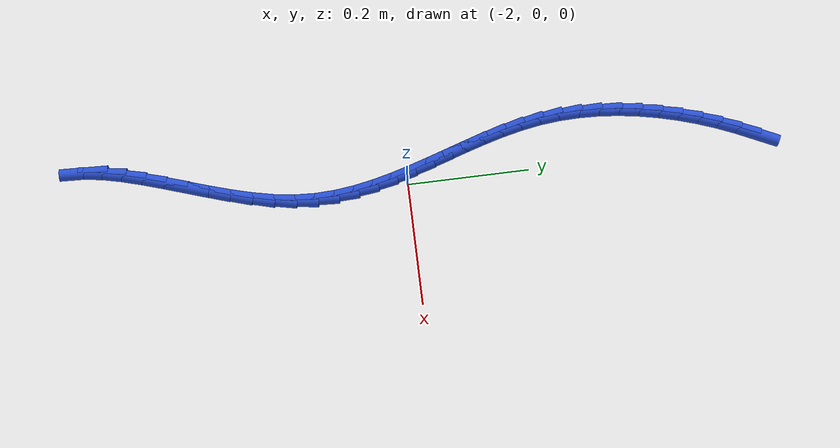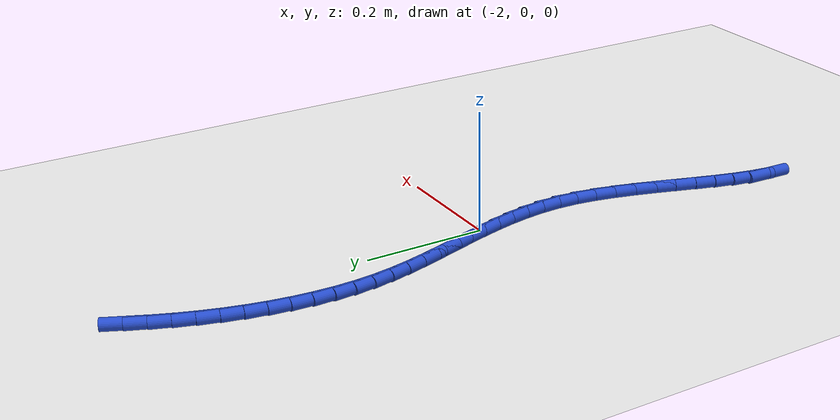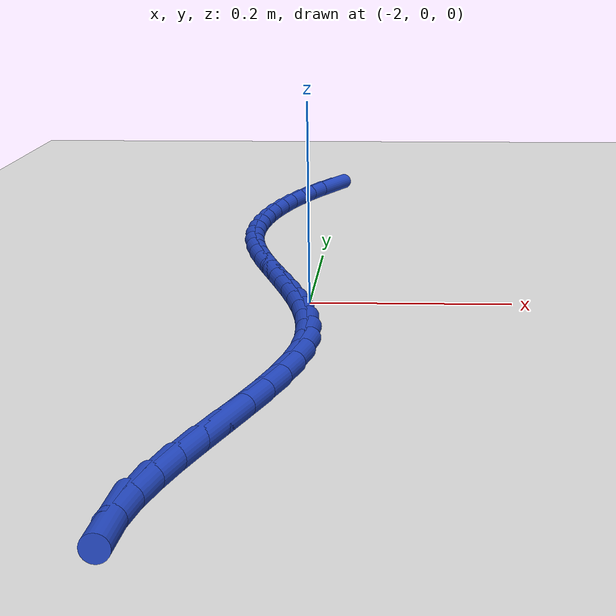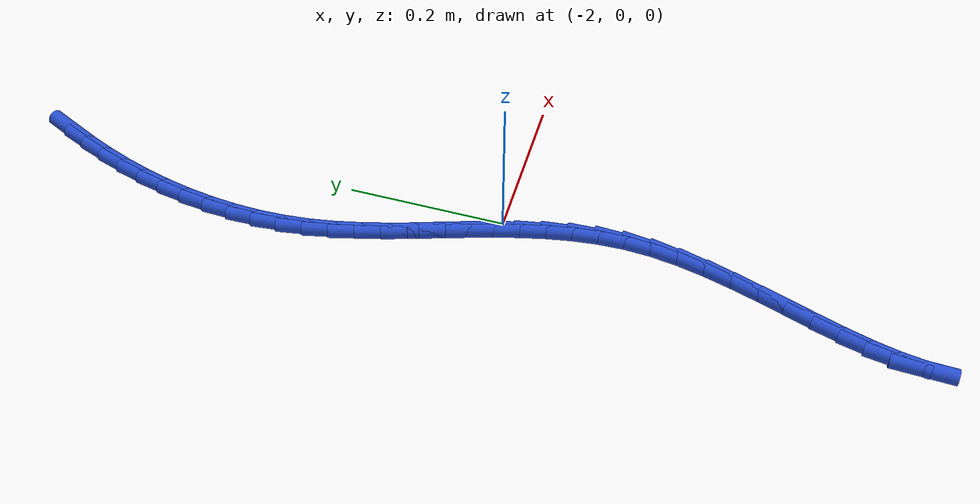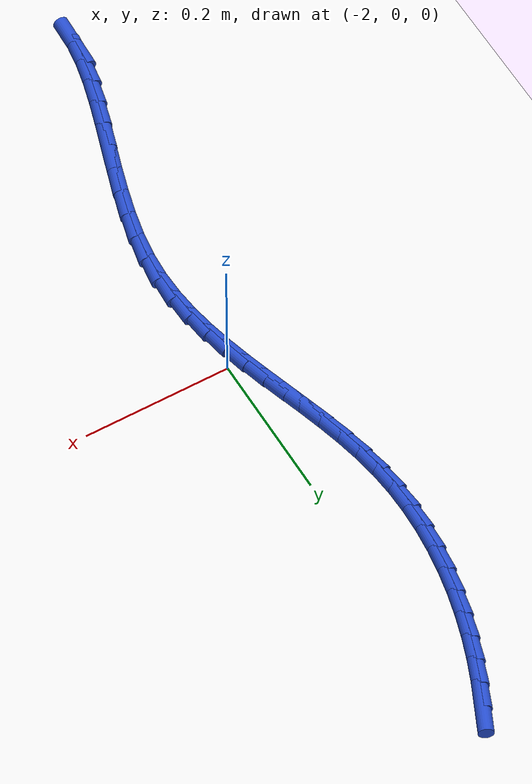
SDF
<sdf version="1.6">
 <world name="default">
  <model name="ground_plane">
   <static>1</static>
   <link name="link">
    <collision name="collision">
     <geometry><plane><normal>0 0 1</normal><size>100 100</size></plane></geometry>
     <surface><friction><ode><mu>100</mu><mu2>50</mu2></ode></friction></surface>
    </collision>
    <visual name="visual">
     <cast_shadows>0</cast_shadows>
     <geometry><plane><normal>0 0 1</normal><size>100 100</size></plane></geometry>
     <material>
      <script><uri>file://media/materials/scripts/gazebo.material</uri><name>Gazebo/WhiteGlow</name></script>
     </material>
    </visual>
   </link>
  </model>
  <model name="line">
   <link name="link_87">
    <pose>-2.012968515614561 0.5780218655934589 0.01 0 1.57 1.1371837574539119</pose>
    <collision name="collision">
     <geometry><cylinder><radius>0.01</radius><length>0.08</length></cylinder></geometry>
    </collision>
    <visual name="visual">
     <material>
      <script><name>Gazebo/Blue</name><uri>file://media/materials/scripts/gazebo.material</uri></script>
     </material>
     <geometry><cylinder><radius>0.01</radius><length>0.08</length></cylinder></geometry>
    </visual>
   </link>
   <link name="link_88">
    <pose>-2.0267044694741507 0.5483546242345471 0.01 0 1.57 1.178987380434584</pose>
    <collision name="collision">
     <geometry><cylinder><radius>0.01</radius><length>0.08</length></cylinder></geometry>
    </collision>
    <visual name="visual">
     <material>
      <script><name>Gazebo/Blue</name><uri>file://media/materials/scripts/gazebo.material</uri></script>
     </material>
     <geometry><cylinder><radius>0.01</radius><length>0.08</length></cylinder></geometry>
    </visual>
   </link>
   <link name="link_89">
    <pose>-2.039185139887997 0.5181475967466094 0.01 0 1.57 1.2232135980595182</pose>
    <collision name="collision">
     <geometry><cylinder><radius>0.01</radius><length>0.08</length></cylinder></geometry>
    </collision>
    <visual name="visual">
     <material>
      <script><name>Gazebo/Blue</name><uri>file://media/materials/scripts/gazebo.material</uri></script>
     </material>
     <geometry><cylinder><radius>0.01</radius><length>0.08</length></cylinder></geometry>
    </visual>
   </link>
   <link name="link_90">
    <pose>-2.0503314327369138 0.48738151044109135 0.01 0 1.57 1.269723517690743</pose>
    <collision name="collision">
     <geometry><cylinder><radius>0.01</radius><length>0.08</length></cylinder></geometry>
    </collision>
    <visual name="visual">
     <material>
      <script><name>Gazebo/Blue</name><uri>file://media/materials/scripts/gazebo.material</uri></script>
     </material>
     <geometry><cylinder><radius>0.01</radius><length>0.08</length></cylinder></geometry>
    </visual>
   </link>
   <link name="link_91">
    <pose>-2.0600642539017153 0.45603709262943826 0.01 0 1.57 1.3183009383375093</pose>
    <collision name="collision">
     <geometry><cylinder><radius>0.01</radius><length>0.08</length></cylinder></geometry>
    </collision>
    <visual name="visual">
     <material>
      <script><name>Gazebo/Blue</name><uri>file://media/materials/scripts/gazebo.material</uri></script>
     </material>
     <geometry><cylinder><radius>0.01</radius><length>0.08</length></cylinder></geometry>
    </visual>
   </link>
   <link name="link_92">
    <pose>-2.0682992230941997 0.4241188186944549 0.01 0 1.57 1.3688706429407582</pose>
    <collision name="collision">
     <geometry><cylinder><radius>0.01</radius><length>0.08</length></cylinder></geometry>
    </collision>
    <visual name="visual">
     <material>
      <script><name>Gazebo/Blue</name><uri>file://media/materials/scripts/gazebo.material</uri></script>
     </material>
     <geometry><cylinder><radius>0.01</radius><length>0.08</length></cylinder></geometry>
    </visual>
   </link>
   <link name="link_93">
    <pose>-2.0749269824305645 0.39174337566425377 0.01 0 1.57 1.4218645096690845</pose>
    <collision name="collision">
     <geometry><cylinder><radius>0.01</radius><length>0.08</length></cylinder></geometry>
    </collision>
    <visual name="visual">
     <material>
      <script><name>Gazebo/Blue</name><uri>file://media/materials/scripts/gazebo.material</uri></script>
     </material>
     <geometry><cylinder><radius>0.01</radius><length>0.08</length></cylinder></geometry>
    </visual>
   </link>
   <link name="link_94">
    <pose>-2.0798308038127082 0.3590605611948213 0.01 0 1.57 1.4777914092104925</pose>
    <collision name="collision">
     <geometry><cylinder><radius>0.01</radius><length>0.08</length></cylinder></geometry>
    </collision>
    <visual name="visual">
     <material>
      <script><name>Gazebo/Blue</name><uri>file://media/materials/scripts/gazebo.material</uri></script>
     </material>
     <geometry><cylinder><radius>0.01</radius><length>0.08</length></cylinder></geometry>
    </visual>
   </link>
   <link name="link_95">
    <pose>-2.082893958074159 0.3262201777417732 0.01 0 1.57 1.537146316521804</pose>
    <collision name="collision">
     <geometry><cylinder><radius>0.01</radius><length>0.08</length></cylinder></geometry>
    </collision>
    <visual name="visual">
     <material>
      <script><name>Gazebo/Blue</name><uri>file://media/materials/scripts/gazebo.material</uri></script>
     </material>
     <geometry><cylinder><radius>0.01</radius><length>0.08</length></cylinder></geometry>
    </visual>
   </link>
   <link name="link_96">
    <pose>-2.0839997160484485 0.2933720277607265 0.01 0 1.57 -1.541196825740562</pose>
    <collision name="collision">
     <geometry><cylinder><radius>0.01</radius><length>0.08</length></cylinder></geometry>
    </collision>
    <visual name="visual">
     <material>
      <script><name>Gazebo/Blue</name><uri>file://media/materials/scripts/gazebo.material</uri></script>
     </material>
     <geometry><cylinder><radius>0.01</radius><length>0.08</length></cylinder></geometry>
    </visual>
   </link>
   <link name="link_97">
    <pose>-2.083031348569105 0.26066591370729697 0.01 0 1.57 -1.4736448588759778</pose>
    <collision name="collision">
     <geometry><cylinder><radius>0.01</radius><length>0.08</length></cylinder></geometry>
    </collision>
    <visual name="visual">
     <material>
      <script><name>Gazebo/Blue</name><uri>file://media/materials/scripts/gazebo.material</uri></script>
     </material>
     <geometry><cylinder><radius>0.01</radius><length>0.08</length></cylinder></geometry>
    </visual>
   </link>
   <link name="link_98">
    <pose>-2.0798723017224003 0.22825156254962825 0.01 0 1.57 -1.4057006621935275</pose>
    <collision name="collision">
     <geometry><cylinder><radius>0.01</radius><length>0.08</length></cylinder></geometry>
    </collision>
    <visual name="visual">
     <material>
      <script><name>Gazebo/Blue</name><uri>file://media/materials/scripts/gazebo.material</uri></script>
     </material>
     <geometry><cylinder><radius>0.01</radius><length>0.08</length></cylinder></geometry>
    </visual>
   </link>
   <link name="link_99">
    <pose>-2.0745359118802775 0.19622275297603864 0.01 0 1.57 -1.349272979844258</pose>
    <collision name="collision">
     <geometry><cylinder><radius>0.01</radius><length>0.08</length></cylinder></geometry>
    </collision>
    <visual name="visual">
     <material>
      <script><name>Gazebo/Blue</name><uri>file://media/materials/scripts/gazebo.material</uri></script>
     </material>
     <geometry><cylinder><radius>0.01</radius><length>0.08</length></cylinder></geometry>
    </visual>
   </link>
   <link name="link_100">
    <pose>-2.067395436099298 0.16451823327304513 0.01 0 1.57 -1.306696950791737</pose>
    <collision name="collision">
     <geometry><cylinder><radius>0.01</radius><length>0.08</length></cylinder></geometry>
    </collision>
    <visual name="visual">
     <material>
      <script><name>Gazebo/Blue</name><uri>file://media/materials/scripts/gazebo.material</uri></script>
     </material>
     <geometry><cylinder><radius>0.01</radius><length>0.08</length></cylinder></geometry>
    </visual>
   </link>
   <link name="link_101">
    <pose>-2.058885959924939 0.1330501200388805 0.01 0 1.57 -1.277948307898485</pose>
    <collision name="collision">
     <geometry><cylinder><radius>0.01</radius><length>0.08</length></cylinder></geometry>
    </collision>
    <visual name="visual">
     <material>
      <script><name>Gazebo/Blue</name><uri>file://media/materials/scripts/gazebo.material</uri></script>
     </material>
     <geometry><cylinder><radius>0.01</radius><length>0.08</length></cylinder></geometry>
    </visual>
   </link>
   <link name="link_102">
    <pose>-2.0494425689026796 0.10173052987177869 0.01 0 1.57 -1.2628542115633734</pose>
    <collision name="collision">
     <geometry><cylinder><radius>0.01</radius><length>0.08</length></cylinder></geometry>
    </collision>
    <visual name="visual">
     <material>
      <script><name>Gazebo/Blue</name><uri>file://media/materials/scripts/gazebo.material</uri></script>
     </material>
     <geometry><cylinder><radius>0.01</radius><length>0.08</length></cylinder></geometry>
    </visual>
   </link>
   <link name="link_103">
    <pose>-2.0395003485779983 0.07047157936997248 0.01 0 1.57 -1.2612562811690498</pose>
    <collision name="collision">
     <geometry><cylinder><radius>0.01</radius><length>0.08</length></cylinder></geometry>
    </collision>
    <visual name="visual">
     <material>
      <script><name>Gazebo/Blue</name><uri>file://media/materials/scripts/gazebo.material</uri></script>
     </material>
     <geometry><cylinder><radius>0.01</radius><length>0.08</length></cylinder></geometry>
    </visual>
   </link>
   <link name="link_104">
    <pose>-2.029494384496372 0.03918538513169499 0.01 0 1.57 -1.273092450867149</pose>
    <collision name="collision">
     <geometry><cylinder><radius>0.01</radius><length>0.08</length></cylinder></geometry>
    </collision>
    <visual name="visual">
     <material>
      <script><name>Gazebo/Blue</name><uri>file://media/materials/scripts/gazebo.material</uri></script>
     </material>
     <geometry><cylinder><radius>0.01</radius><length>0.08</length></cylinder></geometry>
    </visual>
   </link>
   <link name="link_105">
    <pose>-2.0198597622032812 0.007784063755179441 0.01 0 1.57 -1.2984044166174307</pose>
    <collision name="collision">
     <geometry><cylinder><radius>0.01</radius><length>0.08</length></cylinder></geometry>
    </collision>
    <visual name="visual">
     <material>
      <script><name>Gazebo/Blue</name><uri>file://media/materials/scripts/gazebo.material</uri></script>
     </material>
     <geometry><cylinder><radius>0.01</radius><length>0.08</length></cylinder></geometry>
    </visual>
   </link>
   <link name="link_106">
    <pose>-2.0110315672442027 -0.023820268161341786 0.01 0 1.57 -1.337273293331647</pose>
    <collision name="collision">
     <geometry><cylinder><radius>0.01</radius><length>0.08</length></cylinder></geometry>
    </collision>
    <visual name="visual">
     <material>
      <script><name>Gazebo/Blue</name><uri>file://media/materials/scripts/gazebo.material</uri></script>
     </material>
     <geometry><cylinder><radius>0.01</radius><length>0.08</length></cylinder></geometry>
    </visual>
   </link>
   <link name="link_107">
    <pose>-2.003444885164616 -0.05571549401963409 0.01 0 1.57 -1.3896809120876625</pose>
    <collision name="collision">
     <geometry><cylinder><radius>0.01</radius><length>0.08</length></cylinder></geometry>
    </collision>
    <visual name="visual">
     <material>
      <script><name>Gazebo/Blue</name><uri>file://media/materials/scripts/gazebo.material</uri></script>
     </material>
     <geometry><cylinder><radius>0.01</radius><length>0.08</length></cylinder></geometry>
    </visual>
   </link>
   <link name="link_108">
    <pose>-1.997534801509998 -0.08798949722146497 0.01 0 1.57 -1.4552979183904662</pose>
    <collision name="collision">
     <geometry><cylinder><radius>0.01</radius><length>0.08</length></cylinder></geometry>
    </collision>
    <visual name="visual">
     <material>
      <script><name>Gazebo/Blue</name><uri>file://media/materials/scripts/gazebo.material</uri></script>
     </material>
     <geometry><cylinder><radius>0.01</radius><length>0.08</length></cylinder></geometry>
    </visual>
   </link>
   <link name="link_109">
    <pose>-1.9937364018258283 -0.12073016116860136 0.01 0 1.57 -1.5332221184198722</pose>
    <collision name="collision">
     <geometry><cylinder><radius>0.01</radius><length>0.08</length></cylinder></geometry>
    </collision>
    <visual name="visual">
     <material>
      <script><name>Gazebo/Blue</name><uri>file://media/materials/scripts/gazebo.material</uri></script>
     </material>
     <geometry><cylinder><radius>0.01</radius><length>0.08</length></cylinder></geometry>
    </visual>
   </link>
   <link name="link_110">
    <pose>-1.9924847716575844 -0.15402536926281 0.01 0 1.57 1.5198697846942886</pose>
    <collision name="collision">
     <geometry><cylinder><radius>0.01</radius><length>0.08</length></cylinder></geometry>
    </collision>
    <visual name="visual">
     <material>
      <script><name>Gazebo/Blue</name><uri>file://media/materials/scripts/gazebo.material</uri></script>
     </material>
     <geometry><cylinder><radius>0.01</radius><length>0.08</length></cylinder></geometry>
    </visual>
   </link>
   <link name="link_111">
    <pose>-1.9942145876635393 -0.1879628848055008 0.01 0 1.57 1.4305593445122553</pose>
    <collision name="collision">
     <geometry><cylinder><radius>0.01</radius><length>0.08</length></cylinder></geometry>
    </collision>
    <visual name="visual">
     <material>
      <script><name>Gazebo/Blue</name><uri>file://media/materials/scripts/gazebo.material</uri></script>
     </material>
     <geometry><cylinder><radius>0.01</radius><length>0.08</length></cylinder></geometry>
    </visual>
   </link>
   <link name="link_112">
    <pose>-1.9990974819716163 -0.22255320836758472 0.01 0 1.57 1.360155223893119</pose>
    <collision name="collision">
     <geometry><cylinder><radius>0.01</radius><length>0.08</length></cylinder></geometry>
    </collision>
    <visual name="visual">
     <material>
      <script><name>Gazebo/Blue</name><uri>file://media/materials/scripts/gazebo.material</uri></script>
     </material>
     <geometry><cylinder><radius>0.01</radius><length>0.08</length></cylinder></geometry>
    </visual>
   </link>
   <link name="link_113">
    <pose>-2.0065902662559365 -0.25759687994787805 0.01 0 1.57 1.3092422686753122</pose>
    <collision name="collision">
     <geometry><cylinder><radius>0.01</radius><length>0.08</length></cylinder></geometry>
    </collision>
    <visual name="visual">
     <material>
      <script><name>Gazebo/Blue</name><uri>file://media/materials/scripts/gazebo.material</uri></script>
     </material>
     <geometry><cylinder><radius>0.01</radius><length>0.08</length></cylinder></geometry>
    </visual>
   </link>
   <link name="link_114">
    <pose>-2.0160294817936673 -0.2928591131339084 0.01 0 1.57 1.2754816400171824</pose>
    <collision name="collision">
     <geometry><cylinder><radius>0.01</radius><length>0.08</length></cylinder></geometry>
    </collision>
    <visual name="visual">
     <material>
      <script><name>Gazebo/Blue</name><uri>file://media/materials/scripts/gazebo.material</uri></script>
     </material>
     <geometry><cylinder><radius>0.01</radius><length>0.08</length></cylinder></geometry>
    </visual>
   </link>
   <link name="link_115">
    <pose>-2.026751669861976 -0.32810512151320237 0.01 0 1.57 1.2573832315867985</pose>
    <collision name="collision">
     <geometry><cylinder><radius>0.01</radius><length>0.08</length></cylinder></geometry>
    </collision>
    <visual name="visual">
     <material>
      <script><name>Gazebo/Blue</name><uri>file://media/materials/scripts/gazebo.material</uri></script>
     </material>
     <geometry><cylinder><radius>0.01</radius><length>0.08</length></cylinder></geometry>
    </visual>
   </link>
   <link name="link_116">
    <pose>-2.0380933717380274 -0.3631001186732866 0.01 0 1.57 1.2544097683145685</pose>
    <collision name="collision">
     <geometry><cylinder><radius>0.01</radius><length>0.08</length></cylinder></geometry>
    </collision>
    <visual name="visual">
     <material>
      <script><name>Gazebo/Blue</name><uri>file://media/materials/scripts/gazebo.material</uri></script>
     </material>
     <geometry><cylinder><radius>0.01</radius><length>0.08</length></cylinder></geometry>
    </visual>
   </link>
   <link name="link_117">
    <pose>-2.0493911286989914 -0.39760931820168816 0.01 0 1.57 1.2670647580242884</pose>
    <collision name="collision">
     <geometry><cylinder><radius>0.01</radius><length>0.08</length></cylinder></geometry>
    </collision>
    <visual name="visual">
     <material>
      <script><name>Gazebo/Blue</name><uri>file://media/materials/scripts/gazebo.material</uri></script>
     </material>
     <geometry><cylinder><radius>0.01</radius><length>0.08</length></cylinder></geometry>
    </visual>
   </link>
   <link name="link_118">
    <pose>-2.0599814820220317 -0.4313979336859333 0.01 0 1.57 1.2970483163602338</pose>
    <collision name="collision">
     <geometry><cylinder><radius>0.01</radius><length>0.08</length></cylinder></geometry>
    </collision>
    <visual name="visual">
     <material>
      <script><name>Gazebo/Blue</name><uri>file://media/materials/scripts/gazebo.material</uri></script>
     </material>
     <geometry><cylinder><radius>0.01</radius><length>0.08</length></cylinder></geometry>
    </visual>
   </link>
   <link name="link_119">
    <pose>-2.069200972984316 -0.4642311787135499 0.01 0 1.57 1.3475132901031481</pose>
    <collision name="collision">
     <geometry><cylinder><radius>0.01</radius><length>0.08</length></cylinder></geometry>
    </collision>
    <visual name="visual">
     <material>
      <script><name>Gazebo/Blue</name><uri>file://media/materials/scripts/gazebo.material</uri></script>
     </material>
     <geometry><cylinder><radius>0.01</radius><length>0.08</length></cylinder></geometry>
    </visual>
   </link>
   <link name="link_120">
    <pose>-2.076386142863012 -0.49587426687206276 0.01 0 1.57 1.4233738375030998</pose>
    <collision name="collision">
     <geometry><cylinder><radius>0.01</radius><length>0.08</length></cylinder></geometry>
    </collision>
    <visual name="visual">
     <material>
      <script><name>Gazebo/Blue</name><uri>file://media/materials/scripts/gazebo.material</uri></script>
     </material>
     <geometry><cylinder><radius>0.01</radius><length>0.08</length></cylinder></geometry>
    </visual>
   </link>
   <link name="link_121">
    <pose>-2.0808735329352848 -0.5260924117489995 0.01 0 1.57 1.5313834824705392</pose>
    <collision name="collision">
     <geometry><cylinder><radius>0.01</radius><length>0.08</length></cylinder></geometry>
    </collision>
    <visual name="visual">
     <material>
      <script><name>Gazebo/Blue</name><uri>file://media/materials/scripts/gazebo.material</uri></script>
     </material>
     <geometry><cylinder><radius>0.01</radius><length>0.08</length></cylinder></geometry>
    </visual>
   </link>
  </model>
 </world>
</sdf>
